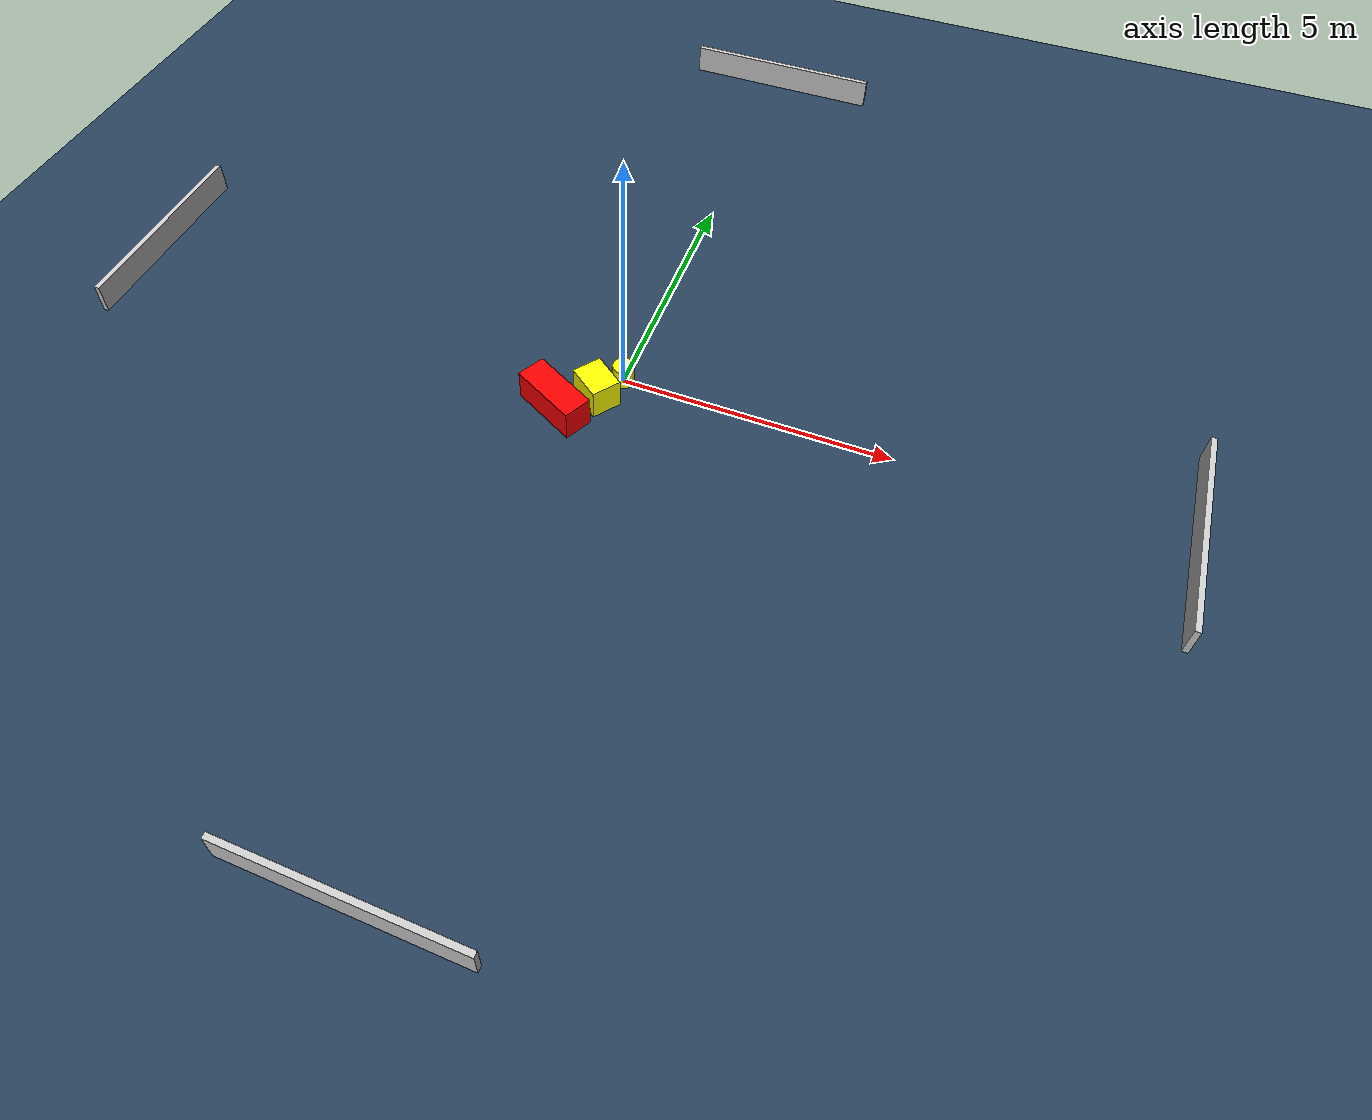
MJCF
<?xml version="1.0" ?>
<mujoco model="generated_environment">
  <option timestep="0.01" integrator="RK4" cone="elliptic"/>
  <default>
    <geom density="1"/>
  </default>
  <asset>
    <texture builtin="gradient" height="3072" name="skybox" rgb1="0.3 0.5 0.7" rgb2="0 0 0" type="skybox" width="512"/>
    <texture builtin="checker" height="300" name="groundplane" rgb1="0.2 0.3 0.4" rgb2="0.1 0.2 0.3" type="2d" width="300"/>
    <material name="groundplane" reflectance="0.2" texrepeat="5 5" texture="groundplane"/>
  </asset>
  <worldbody>
    <light dir="0 0 -1" directional="true" pos="0 0 1.5"/>
    <geom condim="3" friction="0.5 0.005 0.001" material="groundplane" name="floor" pos="0 0 0" size="0 0 0.05" type="plane"/>
    <body name="walls">
      <geom name="wall_1" condim="4" pos="-10.0 0.0 0.3" rgba="0.800000011920929 0.800000011920929 0.800000011920929 1.0" size="0.05 2.0 0.3" type="box"/>
      <geom name="wall_2" condim="4" pos="10.0 0.0 0.3" rgba="0.800000011920929 0.800000011920929 0.800000011920929 1.0" size="0.05 2.0 0.3" type="box"/>
      <geom name="wall_3" condim="4" pos="0.0 -10.0 0.3" rgba="0.800000011920929 0.800000011920929 0.800000011920929 1.0" size="2.0 0.05 0.3" type="box"/>
      <geom name="wall_4" condim="4" pos="0.0 10.0 0.3" rgba="0.800000011920929 0.800000011920929 0.800000011920929 1.0" size="2.0 0.05 0.3" type="box"/>
    </body>
    <body name="robot">
      <joint name="joint_x" type="slide" pos="0 0 0" axis="1 0 0"/>
      <joint name="joint_y" type="slide" pos="0 0 0" axis="0 1 0"/>
      <geom name="robot" type="cylinder" pos="0.0 0.0 0.2" size="0.2 0.2 0.0" mass="5.0" friction="1.0 0.005 0.0001" condim="4" rgba="1.0 1.0 0.0 1.0"/>
    </body>
    <body name="obstacle_1_movable">
      <geom name="obstacle_1_movable" condim="4" pos="-0.29020081666963443 -0.5801401404279151 0.3" euler="0 0 233.4254798256131" friction="0.0 0.005 0.001" rgba="1.0 1.0 0.0 1.0" size="0.27893636573977776 0.3438680388627676 0.3" type="box" mass="0.1"/>
      <joint type="free"/>
    </body>
    <body name="obstacle_2_static">
      <geom name="obstacle_2_static" condim="4" pos="-0.8939541122323409 -1.084986857133675 0.3" euler="0 0 152.85811283231888" friction="0.0 0.005 0.001" rgba="1.0 0.0 0.0 1.0" size="0.6585775333527735 0.2706428855938784 0.3" type="box"/>
    </body>
  </worldbody>
  <actuator>
    <motor name="actuator_x" joint="joint_x" gear="1" ctrlrange="-1 1"/>
    <motor name="actuator_y" joint="joint_y" gear="1" ctrlrange="-1 1"/>
  </actuator>
</mujoco>
